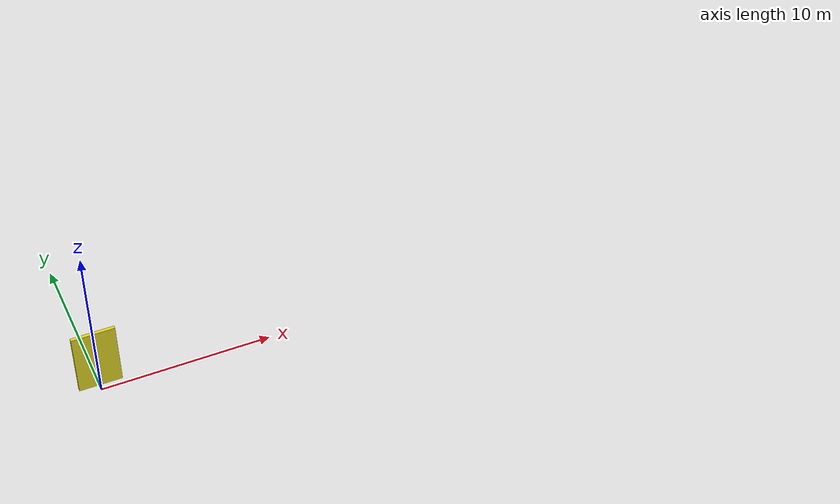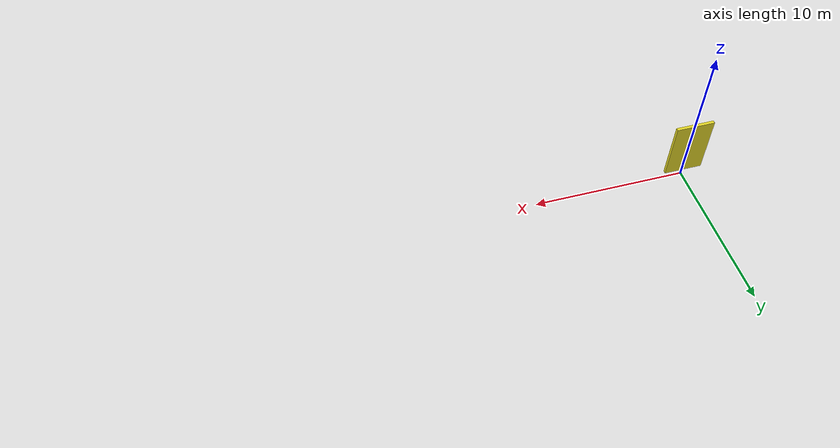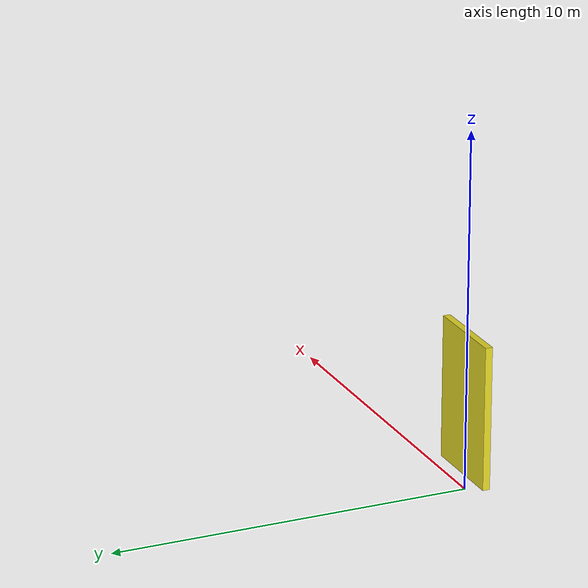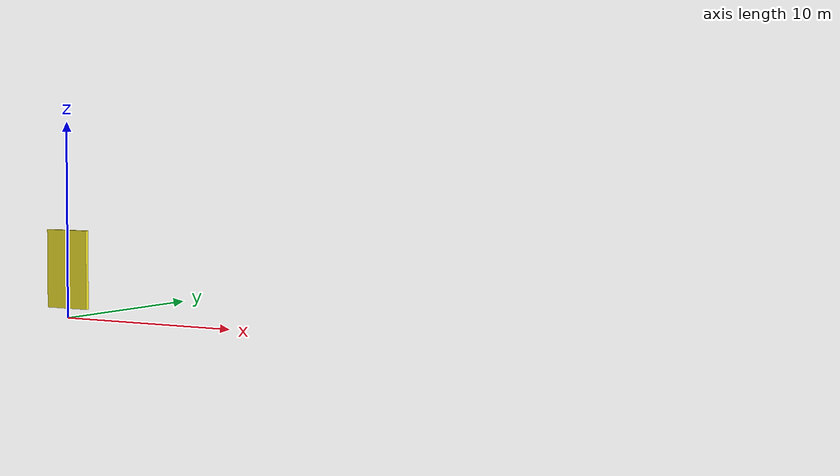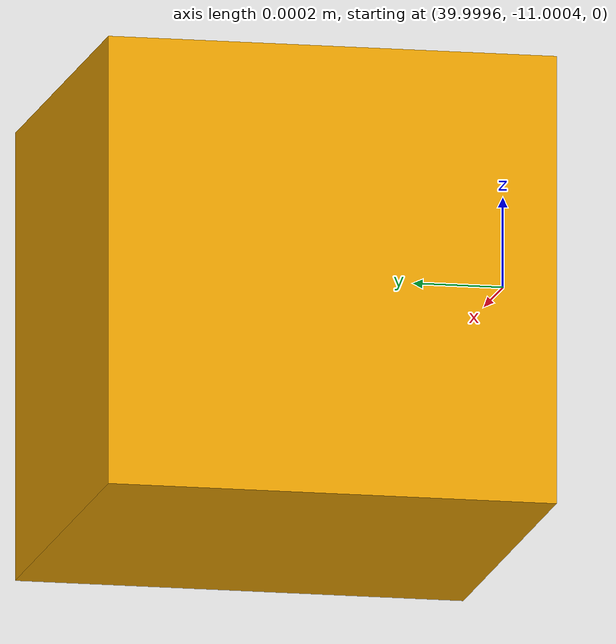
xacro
<robot xmlns:xacro="http://www.ros.org/wiki/xacro" name="test_model">

  <!-- root link, on the ground just below the model origin -->
  <link name="base_footprint">
   <visual>
      <origin xyz="40 -11 0" rpy="0 0 0" />
      <geometry>
        <box size="0.001 0.001 0.001" />
      </geometry>
    </visual>
  </link>

  <joint name="base_link_joint" type="fixed">
    <origin xyz="0 0 2.5" rpy="0 0 0" />
    <parent link="base_footprint"/>
    <child link="base_link" />
  </joint>

  <!-- the model -->
  <link name="base_link">
    <inertial>
      <mass value="50" />
      <origin xyz="0 0 0" />
      <inertia ixx="50.0" ixy="0.0" ixz="0.0"
        iyy="50.0" iyz="0.0"
        izz="50.0" />
    </inertial>
    <visual>
      <geometry>
        <box size="2.5 0.2 4" /> <!-- does not need to match collision -->
      </geometry>
    </visual>
    <collision>
      <geometry>
        <box size="2.5 0.2 4" />
      </geometry>
    </collision>
  </link>

  <gazebo reference="base_footprint">
   <turnGravityOff>true</turnGravityOff>
  </gazebo>

  <xacro:macro name="gazebo_material" params="ref color">
    <gazebo reference="${ref}">
      <material>Gazebo/${color}</material>
    </gazebo>
  </xacro:macro>

  <xacro:gazebo_material ref="base_link"  color="Yellow" />

</robot>
